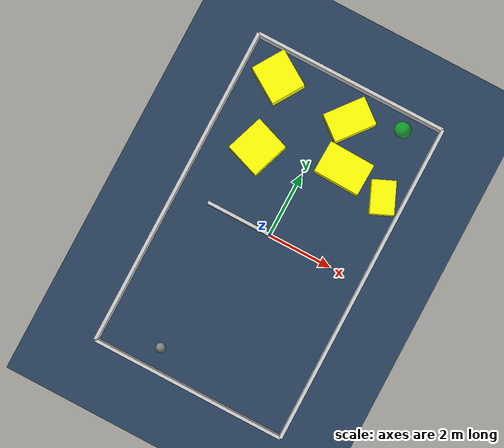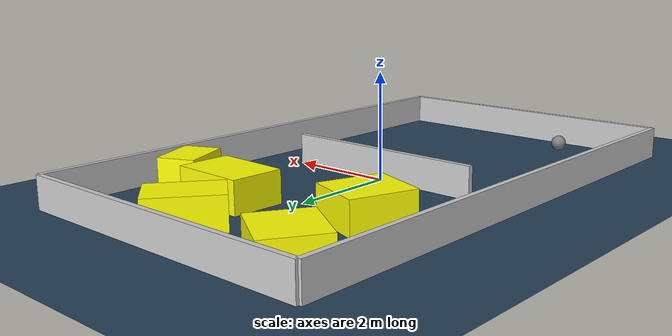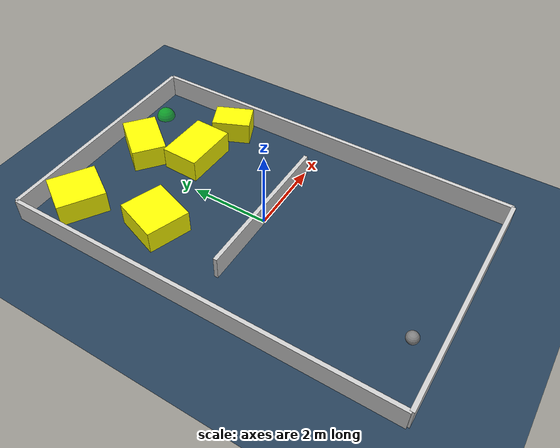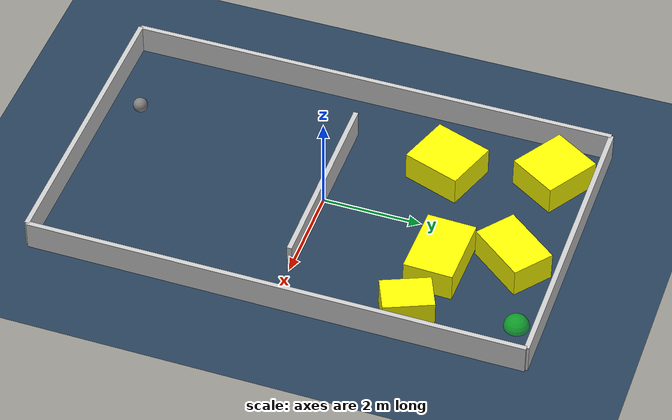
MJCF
<?xml version="1.0" ?>
<mujoco model="generated_environment">
  <option timestep="0.01" integrator="RK4" cone="elliptic"/>
  <default>
    <geom density="1"/>
  </default>
  <asset>
    <texture builtin="gradient" height="3072" rgb1="0.3 0.5 0.7" rgb2="0 0 0" type="skybox" width="512"/>
    <texture builtin="checker" height="300" mark="edge" markrgb="0.8 0.8 0.8" name="groundplane" rgb1="0.2 0.3 0.4" rgb2="0.1 0.2 0.3" type="2d" width="300"/>
    <material name="groundplane" reflectance="0.2" texrepeat="5 5" texture="groundplane" texuniform="true"/>
    <material name="robot" rgba="1.0 1.0 0.0 1.0"/>
  </asset>
  <worldbody>
    <light dir="0 0 -1" directional="true" pos="0 0 1.5"/>
    <geom condim="4" friction="0.5 0.005 0.001" material="groundplane" name="floor" size="0 0 0.05" type="plane"/>
    <body name="walls">
      <geom name="wall_1" condim="4" pos="-3.0 0.0 0.3" rgba="0.800000011920929 0.800000011920929 0.800000011920929 1.0" size="0.05 5.0 0.3" type="box"/>
      <geom name="wall_2" condim="4" pos="3.0 0.0 0.3" rgba="0.800000011920929 0.800000011920929 0.800000011920929 1.0" size="0.05 5.0 0.3" type="box"/>
      <geom name="wall_3" condim="4" pos="0.0 -5.0 0.3" rgba="0.800000011920929 0.800000011920929 0.800000011920929 1.0" size="3.0 0.05 0.3" type="box"/>
      <geom name="wall_4" condim="4" pos="0.0 5.0 0.3" rgba="0.800000011920929 0.800000011920929 0.800000011920929 1.0" size="3.0 0.05 0.3" type="box"/>
      <geom name="wall_5" condim="4" pos="0.0 0.0 0.3" rgba="0.800000011920929 0.800000011920929 0.800000011920929 1.0" size="2.0 0.05 0.3" type="box"/>
    </body>
    <body name="robot">
      <joint name="joint_x" type="slide" pos="0 0 0" axis="1 0 0"/>
      <joint name="joint_y" type="slide" pos="0 0 0" axis="0 1 0"/>
      <geom name="robot" type="sphere" pos="-1.250676617354767 -4.3452417368646366 0.15" size="0.15 0.15 0.15" mass="5.0" friction="1.0 0.005 0.0001" condim="4"/>
    </body>
    <body name="obstacle_1_movable">
      <geom name="obstacle_1_movable" condim="4" pos="0.9992590392837313 2.6975984653342326 0.3" euler="0 0 178.30464045179815" friction="0.0 0.005 0.001" rgba="1 1 0 1" size="0.7160125297162478 0.4929999416820797 0.3" type="box" mass="0.1"/>
      <joint type="free"/>
    </body>
    <body name="obstacle_2_movable">
      <geom name="obstacle_2_movable" condim="4" pos="2.374960387066648 2.479756801169108 0.3" euler="0 0 203.4058886915229" friction="0.0 0.005 0.001" rgba="1 1 0 1" size="0.36001264304929076 0.5010374662956545 0.3" type="box" mass="0.1"/>
      <joint type="free"/>
    </body>
    <body name="obstacle_3_movable">
      <geom name="obstacle_3_movable" condim="4" pos="0.48308841949064396 4.0186129540017905 0.3" euler="0 0 231.3221655788165" friction="0.0 0.005 0.001" rgba="1 1 0 1" size="0.6512673710747303 0.43749383326298036 0.3" type="box" mass="0.1"/>
      <joint type="free"/>
    </body>
    <body name="obstacle_4_movable">
      <geom name="obstacle_4_movable" condim="4" pos="-1.4950258287710603 2.0703949275641538 0.3" euler="0 0 70.69857562234819" friction="0.0 0.005 0.001" rgba="1 1 0 1" size="0.6029802452166175 0.5579363948405636 0.3" type="box" mass="0.1"/>
      <joint type="free"/>
    </body>
    <body name="obstacle_5_movable">
      <geom name="obstacle_5_movable" condim="4" pos="-1.9132438663232372 4.146556062795363 0.3" euler="0 0 147.64345107806335" friction="0.0 0.005 0.001" rgba="1 1 0 1" size="0.6021857367414298 0.5368015763409428 0.3" type="box" mass="0.1"/>
      <joint type="free"/>
    </body>
    <site name="goal" type="sphere" size="0.25 0.25 0.25" rgba="0 1 0 0.5" pos="1.9916769736043096 4.535906400818066 0.0"/>
  </worldbody>
  <actuator>
    <motor name="actuator_x" joint="joint_x" gear="1" ctrlrange="-1 1"/>
    <motor name="actuator_y" joint="joint_y" gear="1" ctrlrange="-1 1"/>
  </actuator>
</mujoco>
